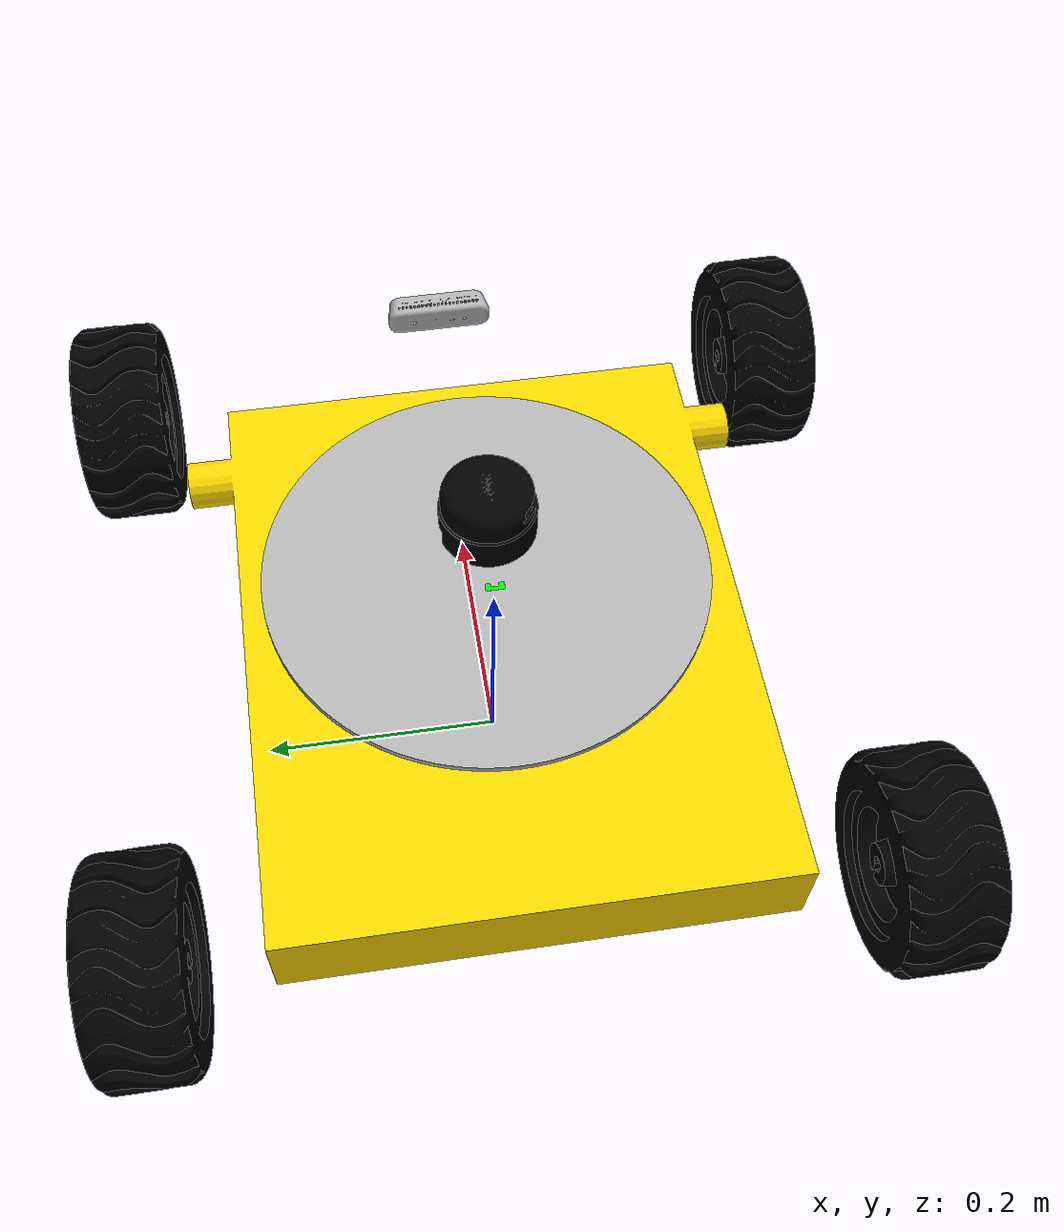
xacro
<?xml version="1.0" ?>
<robot name="diff_bot" xmlns:xacro="http://www.ros.org/wiki/xacro">

<xacro:include filename="$(find diff_bot_description)/urdf/materials.xacro" />
<xacro:include filename="$(find diff_bot_description)/urdf/diff_bot.gazebo" />
<xacro:include filename="$(find diff_bot_description)/urdf/diff_bot.ros2_control.xacro" />

<link name="base_footprint"/>
<link name="base_link">
  <inertial>
    <origin xyz="0.015410510646625566 0.0032885452321206408 0.08213442164076495" rpy="0 0 0"/>
    <mass value="7.733963565774207"/>
    <inertia ixx="0.243725" iyy="0.395902" izz="0.626155" ixy="-0.000305" iyz="-3.7e-05" ixz="6.5e-05"/>
  </inertial>
  <visual>
    <origin xyz="0 0 0" rpy="0 0 0"/>
    <geometry>
      <mesh filename="file://$(find diff_bot_description)/meshes/base_link.stl" scale="0.001 0.001 0.001"/>
    </geometry>
    <material name="gold">
      <color rgba="1.000 0.840 0.000 1.000"/>
    </material>
  </visual>
  <collision>
    <origin xyz="0 0 0" rpy="0 0 0"/>
    <geometry>
      <mesh filename="file://$(find diff_bot_description)/meshes/base_link.stl" scale="0.001 0.001 0.001"/>
    </geometry>
  </collision>
</link>

<link name="mani_base_1">
  <inertial>
    <origin xyz="-4.995256376698343e-07 -4.3501910051979564e-07 0.002499926945686806" rpy="0 0 0"/>
    <mass value="1.29885221271853"/>
    <inertia ixx="0.009947" iyy="0.009947" izz="0.019889" ixy="-0.0" iyz="-0.0" ixz="0.0"/>
  </inertial>
  <visual>
    <origin xyz="-0.015655 -0.003848 -0.117553" rpy="0 0 0"/>
    <geometry>
      <mesh filename="file://$(find diff_bot_description)/meshes/mani_base_1.stl" scale="0.001 0.001 0.001"/>
    </geometry>
    <material name="silver"/>
  </visual>
  <collision>
    <origin xyz="-0.015655 -0.003848 -0.117553" rpy="0 0 0"/>
    <geometry>
      <mesh filename="file://$(find diff_bot_description)/meshes/mani_base_1.stl" scale="0.001 0.001 0.001"/>
    </geometry>
  </collision>
</link>

<link name="camera_link">
  <inertial>
    <origin xyz="0.011555495817293426 1.1123942231884131e-05 -0.008510192245975837" rpy="0 0 0"/>
    <mass value="0.04228680176883171"/>
    <inertia ixx="2.8e-05" iyy="4e-06" izz="2.8e-05" ixy="-0.0" iyz="-0.0" ixz="0.0"/>
  </inertial>
  <visual>
    <origin xyz="-0.303755 -0.003399 -0.10806" rpy="0 0 0"/>
    <geometry>
      <mesh filename="file://$(find diff_bot_description)/meshes/camera_link_1.stl" scale="0.001 0.001 0.001"/>
    </geometry>
    <material name="silver"/>
  </visual>
  <collision>
    <origin xyz="-0.303755 -0.003399 -0.10806" rpy="0 0 0"/>
    <geometry>
      <mesh filename="file://$(find diff_bot_description)/meshes/camera_link_1.stl" scale="0.001 0.001 0.001"/>
    </geometry>
  </collision>
</link>

<link name="wheel_1">
  <inertial>
    <origin xyz="-4.941246887213424e-07 0.02983103010425081 2.449353010069294e-05" rpy="0 0 0"/>
    <mass value="8.686526585739857"/>
    <inertia ixx="0.021355" iyy="0.035633" izz="0.021359" ixy="-0.0" iyz="2e-06" ixz="-0.0"/>
  </inertial>
  <visual>
    <origin xyz="-0.271977 -0.257399 -0.047453" rpy="0 0 0"/>
    <geometry>
      <mesh filename="file://$(find diff_bot_description)/meshes/wheel_1_1.stl" scale="0.001 0.001 0.001"/>
    </geometry>
    <material name="black">
      <color rgba="0.000 0.000 0.000 1.000"/>
    </material>
  </visual>
  <collision>
    <origin xyz="-0.271977 -0.257399 -0.047453" rpy="0 0 0"/>
    <geometry>
      <mesh filename="file://$(find diff_bot_description)/meshes/wheel_1_1.stl" scale="0.001 0.001 0.001"/>
    </geometry>
  </collision>
</link>

<link name="wheel_2">
  <inertial>
    <origin xyz="-4.917332631637628e-07 -0.029830862700103877 2.4483379133757865e-05" rpy="0 0 0"/>
    <mass value="8.686480966639415"/>
    <inertia ixx="0.021355" iyy="0.035633" izz="0.021359" ixy="0.0" iyz="-2e-06" ixz="-0.0"/>
  </inertial>
  <visual>
    <origin xyz="-0.271977 0.250601 -0.047453" rpy="0 0 0"/>
    <geometry>
      <mesh filename="file://$(find diff_bot_description)/meshes/wheel_2_1.stl" scale="0.001 0.001 0.001"/>
    </geometry>
    <material name="black">
      <color rgba="0.000 0.000 0.000 1.000"/>
    </material>
  </visual>
  <collision>
    <origin xyz="-0.271977 0.250601 -0.047453" rpy="0 0 0"/>
    <geometry>
      <mesh filename="file://$(find diff_bot_description)/meshes/wheel_2_1.stl" scale="0.001 0.001 0.001"/>
    </geometry>
  </collision>
</link>

<link name="wheel_3">
  <inertial>
    <origin xyz="-5.147089091328549e-07 0.029830991192337897 2.448330354028888e-05" rpy="0 0 0"/>
    <mass value="8.686480942275635"/>
    <inertia ixx="0.021355" iyy="0.035633" izz="0.021358" ixy="0.0" iyz="2e-06" ixz="0.0"/>
  </inertial>
  <visual>
    <origin xyz="0.240667 -0.256899 -0.047453" rpy="0 0 0"/>
    <geometry>
      <mesh filename="file://$(find diff_bot_description)/meshes/wheel_3_1.stl" scale="0.001 0.001 0.001"/>
    </geometry>
    <material name="black">
      <color rgba="0.000 0.000 0.000 1.000"/>
    </material>
  </visual>
  <collision>
    <origin xyz="0.240667 -0.256899 -0.047453" rpy="0 0 0"/>
    <geometry>
      <mesh filename="file://$(find diff_bot_description)/meshes/wheel_3_1.stl" scale="0.001 0.001 0.001"/>
    </geometry>
  </collision>
</link>

<link name="wheel_4">
  <inertial>
    <origin xyz="-5.123200101930792e-07 -0.029830901585230718 2.449315346100822e-05" rpy="0 0 0"/>
    <mass value="8.686526623237171"/>
    <inertia ixx="0.021355" iyy="0.035633" izz="0.021359" ixy="-0.0" iyz="-2e-06" ixz="0.0"/>
  </inertial>
  <visual>
    <origin xyz="0.240667 0.251101 -0.047453" rpy="0 0 0"/>
    <geometry>
      <mesh filename="file://$(find diff_bot_description)/meshes/wheel_4_1.stl" scale="0.001 0.001 0.001"/>
    </geometry>
    <material name="black">
      <color rgba="0.000 0.000 0.000 1.000"/>
    </material>
  </visual>
  <collision>
    <origin xyz="0.240667 0.251101 -0.047453" rpy="0 0 0"/>
    <geometry>
      <mesh filename="file://$(find diff_bot_description)/meshes/wheel_4_1.stl" scale="0.001 0.001 0.001"/>
    </geometry>
  </collision>
</link>

<link name="imu_link">
  <inertial>
    <origin xyz="-0.0037135131762633944 0.00015074437785556966 -7.192465925183467e-06" rpy="0 0 0"/>
    <mass value="${1*0.027981306586696276}"/>
    <inertia ixx="${1*4e-06}" iyy="${1*2e-06}" izz="${2e-06}" ixy="0.0" iyz="0.0" ixz="0.0"/>
  </inertial>
  <visual>
    <origin xyz="0.331142 0.000425 -0.054538" rpy="0 0 0"/>
    <geometry>
      <mesh filename="file://$(find diff_bot_description)/meshes/imu_1.stl" scale="0.001 0.001 0.001"/>
    </geometry>
    <material name="green">
      <color rgba="0.000 1.000 0.000 1.000"/>
    </material>
  </visual>
  <collision>
    <origin xyz="0.331142 0.000425 -0.054538" rpy="0 0 0"/>
    <geometry>
      <mesh filename="file://$(find diff_bot_description)/meshes/imu_1.stl" scale="0.001 0.001 0.001"/>
    </geometry>
  </collision>
</link>

<link name="lidar_link">
  <inertial>
    <origin xyz="0.024168716871690317 0.00016153042204601072 0.023318927009167684" rpy="0 0 0"/>
    <mass value="${1*1.5656994294737245}"/>
    <inertia ixx="${1*0.000799}" iyy="${1*0.000843}" izz="${1*0.001052}" ixy="0.0" iyz="0.0" ixz="0.0"/>
  </inertial>
  <visual>
    <origin xyz="0.024557 0.000233 -0.105076" rpy="0 0 0"/>
    <geometry>
      <mesh filename="file://$(find diff_bot_description)/meshes/Intel_Realsense_RPLIDAR_1.stl" scale="0.001 0.001 0.001"/>
    </geometry>
    <material name="black">
      <color rgba="0.000 0.000 0.000 1.000"/>
    </material>
  </visual>
  <collision>
    <origin xyz="0.024557 0.000233 -0.105076" rpy="0 0 0"/>
    <geometry>
      <mesh filename="file://$(find diff_bot_description)/meshes/Intel_Realsense_RPLIDAR_1.stl" scale="0.001 0.001 0.001"/>
    </geometry>
  </collision>
</link>

<joint name="Rigid 0" type="fixed">
  <origin xyz="0.0 0.0 0.1" rpy="0 0 0"/>
  <parent link="base_footprint"/>
  <child link="base_link"/>
</joint>

<joint name="Rigid 1" type="fixed">
  <origin xyz="0.015655 0.003848 0.117553" rpy="0 0 0"/>
  <parent link="base_link"/>
  <child link="mani_base_1"/>
</joint>

<joint name="Rigid 2" type="fixed">
  <origin xyz="0.303755 0.003399 0.10806" rpy="0 0 0"/>
  <parent link="base_link"/>
  <child link="camera_link"/>
</joint>

<joint name="Rigid 3" type="fixed">
  <origin xyz="0.0 0.0 0.10806" rpy="0 0 0"/>
  <parent link="base_link"/>
  <child link="imu_link"/>
</joint>

<joint name="Rigid 4" type="fixed">
  <origin xyz="0.01 0.0 0.15" rpy="0 0 0"/>
  <parent link="base_link"/>
  <child link="lidar_link"/>
</joint>

<joint name="Revolute_3" type="continuous">
  <origin xyz="0.271977 0.257399 0.047453" rpy="0 0 0"/>
  <parent link="base_link"/>
  <child link="wheel_1"/>
  <axis xyz="0.0 1.0 -0.0"/>
</joint>

<joint name="Revolute_4" type="continuous">
  <origin xyz="0.271977 -0.250601 0.047453" rpy="0 0 0"/>
  <parent link="base_link"/>
  <child link="wheel_2"/>
  <axis xyz="-0.0 1.0 0.0"/>
</joint>

<joint name="Revolute_5" type="continuous">
  <origin xyz="-0.240667 0.256899 0.047453" rpy="0 0 0"/>
  <parent link="base_link"/>
  <child link="wheel_3"/>
  <axis xyz="0.0 1.0 -0.0"/>
</joint>

<joint name="Revolute_6" type="continuous">
  <origin xyz="-0.240667 -0.251101 0.047453" rpy="0 0 0"/>
  <parent link="base_link"/>
  <child link="wheel_4"/>
  <axis xyz="-0.0 1.0 0.0"/>
</joint>

<link name="camera_link_depth"></link>
<link name="camera_bottom_screw_frame"></link>
<link name="camera_depth_frame"></link>
<link name="camera_depth_optical_frame"></link>
<link name="camera_color_frame"></link>
<link name="camera_color_optical_frame"></link>
<link name="camera_left_ir_frame"></link>
<link name="camera_left_ir_optical_frame"></link>
<link name="camera_right_ir_frame"></link>
<link name="camera_right_ir_optical_frame"></link>

<joint name="camera_joint" type="fixed">
  <parent link="camera_link" />
  <child link="camera_bottom_screw_frame" />
  <origin xyz="0 0.0 0" rpy="0 0 0" />
</joint>

<joint name="camera_link_joint" type="fixed">
  <parent link="camera_bottom_screw_frame" />
  <child link="camera_link_depth" />
  <origin xyz="0 0.0 0.0 " rpy="0 0 0" />
</joint>

<joint name="camera_depth_joint" type="fixed">
  <parent link="camera_link_depth" />
  <child link="camera_depth_frame" />
  <origin xyz="0 0 0" rpy="0 0 0" />
</joint>
<joint name="camera_depth_optical_joint" type="fixed">
  <parent link="camera_depth_frame" />
  <child link="camera_depth_optical_frame" />
  <origin xyz="0 0 0 " rpy="-1.57 0 -1.57" />
</joint>
<joint name="camera_color_joint" type="fixed">
  <parent link="camera_depth_frame" />
  <child link="camera_color_frame" />
  <origin xyz="0 0 0" rpy="0 0 0" />
</joint>
<joint name="camera_color_optical_joint" type="fixed">
  <parent link="camera_color_frame" />
  <child link="camera_color_optical_frame" />
  <origin xyz="0 0 0 " rpy="-1.57 0 -1.57" />
</joint>
<joint name="camera_left_ir_joint" type="fixed">
  <parent link="camera_depth_frame" />
  <child link="camera_left_ir_frame" />
  <origin xyz="0 0 0 " rpy="0 0 0 " />
</joint>
<joint name="camera_left_ir_optical_joint" type="fixed">
  <parent link="camera_left_ir_frame" />
  <child link="camera_left_ir_optical_frame" />
  <origin xyz="0 0 0 " rpy="-1.57 0 -1.57" />
</joint>
<joint name="camera_right_ir_joint" type="fixed">
  <parent link="camera_depth_frame" />
  <child link="camera_right_ir_frame" />
  <origin xyz="0 -0.050 0 " rpy="0 0 0" />
</joint>
<joint name="camera_right_ir_optical_joint" type="fixed">
  <parent link="camera_right_ir_frame" />
  <child link="camera_right_ir_optical_frame" />
  <origin xyz="0 0 0 " rpy="-1.57 0 -1.57" />
</joint>

</robot>

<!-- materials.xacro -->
<robot name="amr_mani" xmlns:xacro="http://www.ros.org/wiki/xacro" >

<material name="silver">
  <color rgba="0.700 0.700 0.700 1.000"/>
</material>

</robot>

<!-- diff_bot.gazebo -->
<robot name="diff_bot" xmlns:xacro="http://www.ros.org/wiki/xacro" >

<xacro:property name="body_color" value="Gazebo/Silver" />

<gazebo>
  <plugin name="control" filename="libgazebo_ros_control.so"/>
</gazebo>

<gazebo reference="base_link">
  <material name="body_color" value="Gazebo/Gold"></material>
  <mu1>0.2</mu1>
  <mu2>0.2</mu2>
  <self_collide>true</self_collide>
  <gravity>true</gravity>
</gazebo>

<gazebo reference="mani_base_1">
  <material>${body_color}</material>
  <mu1>0.2</mu1>
  <mu2>0.2</mu2>
  <self_collide>true</self_collide>
</gazebo>

<gazebo reference="camera_link">
  <material>${body_color}</material>
  <mu1>0.2</mu1>
  <mu2>0.2</mu2>
  <self_collide>true</self_collide>
</gazebo>

<gazebo reference="wheel_1">
  <material name="body_color" value="Gazebo/Black"></material>
  <mu1>0.2</mu1>
  <mu2>0.2</mu2>
  <self_collide>false</self_collide>
</gazebo>

<gazebo reference="wheel_2">
  <material name="body_color" value="Gazebo/Black"></material>
  <mu1>0.2</mu1>
  <mu2>0.2</mu2>
  <self_collide>false</self_collide>
</gazebo>

<gazebo reference="wheel_3">
  <material name="body_color" value="Gazebo/Black"></material>
  <mu1>0.2</mu1>
  <mu2>0.2</mu2>
  <self_collide>false</self_collide>
</gazebo>

<gazebo reference="wheel_4">
  <material name="body_color" value="Gazebo/Black"></material>
  <mu1>0.2</mu1>
  <mu2>0.2</mu2>
  <self_collide>false</self_collide>
</gazebo>

<gazebo reference="imu_link">
  <material name="body_color" value="Gazebo/Grass"></material>
  <mu1>0.2</mu1>
  <mu2>0.2</mu2>
  <self_collide>true</self_collide>
</gazebo>

<gazebo reference="lidar_link">
  <material name="body_color" value="Gazebo/Black"></material>
  <mu1>0.2</mu1>
  <mu2>0.2</mu2>
  <self_collide>true</self_collide>
</gazebo>

<gazebo reference="imu_link">
  <gravity>true</gravity>
  <sensor name="imu_sensor" type="imu">
    <always_on>true</always_on>
    <update_rate>100</update_rate>
    <visualize>true</visualize>
    <topic>__default_topic__</topic>
    <plugin filename="libgazebo_ros_imu_sensor.so" name="imu_plugin">
      <ros>
          <namespace>/</namespace>
          <remapping>~/out:=imu/data</remapping>
      </ros>
      <topicName>imu</topicName>
      <bodyName>imu_link</bodyName>
      <update_rate_HZ>100.0</update_rate_HZ>
      <gaussianNoise>0.0</gaussianNoise>
      <xyz_offset>0 0 0</xyz_offset>
      <rpy_offset>0 0 0</rpy_offset>
      <frame_name>imu_link</frame_name>
      <initial_orientation_as_reference>false</initial_orientation_as_reference>
    </plugin>
    <pose>0 0 0 0 0 0</pose>
  </sensor>
</gazebo>

<gazebo reference="lidar_link">
  <sensor name="lidar" type="ray">
    <always_on>true</always_on>
    <visualize>true</visualize>
    <update_rate>10</update_rate>
    <ray>
      <scan>
        <horizontal>
          <samples>360</samples>
          <resolution>1.000000</resolution>
          <min_angle>0.000000</min_angle>
          <max_angle>6.280000</max_angle>
        </horizontal>
      </scan>
      <range>
        <min>0.120000</min>
        <max>3.5</max>
        <resolution>0.015000</resolution>
      </range>
      <noise>
        <type>gaussian</type>
        <mean>0.0</mean>
        <stddev>0.01</stddev>
      </noise>
    </ray>
    <plugin name="scan" filename="libgazebo_ros_ray_sensor.so">
      <ros>
        <namespace>/</namespace>
        <remapping>~/out:=scan</remapping>
      </ros>
      <output_type>sensor_msgs/LaserScan</output_type>
      <frame_name>lidar_link</frame_name>
    </plugin>
  </sensor>
</gazebo>

<gazebo reference="camera_link">
  <sensor name="cameradepth" type="depth">
    <camera name="camera">
        <horizontal_fov>1.2043</horizontal_fov>
        <image>
            <width>640</width>
            <height>480</height>
            <format>R8G8B8</format>
        </image>
        <clip>
            <near>0.1</near>
            <far>100</far>
        </clip>
    </camera>
    <always_on>1</always_on>
    <update_rate>30</update_rate>
    <visualize>0</visualize>
  </sensor>
  <sensor name="cameracolor" type="camera">
    <camera name="camera">
        <horizontal_fov>1.2043</horizontal_fov>
        <image>
            <width>640</width>
            <height>480</height>
            <format>RGB_INT8</format>
        </image>
        <clip>
            <near>0.1</near>
            <far>100</far>
        </clip>
        <noise>
            <type>gaussian</type>
            <mean>0.0</mean>
            <stddev>0.007</stddev>
        </noise>
    </camera>
    <always_on>1</always_on>
    <update_rate>30</update_rate>
    <visualize>0</visualize>
  </sensor>
  <sensor name="cameraired1" type="camera">
    <camera name="camera">
        <horizontal_fov>1.2043</horizontal_fov>
        <image>
            <width>640</width>
            <height>480</height>
            <format>L_INT8</format>
        </image>
        <clip>
            <near>0.1</near>
            <far>100</far>
        </clip>
        <noise>
            <type>gaussian</type>
            <mean>0.0</mean>
            <stddev>0.05</stddev>
        </noise>
    </camera>
    <always_on>1</always_on>
    <update_rate>1</update_rate>
    <visualize>0</visualize>
  </sensor>
  <sensor name="cameraired2" type="camera">
    <camera name="camera">
        <horizontal_fov>1.2043</horizontal_fov>
        <image>
            <width>640</width>
            <height>480</height>
            <format>L_INT8</format>
        </image>
        <clip>
            <near>0.1</near>
            <far>100</far>
        </clip>
        <noise>
            <type>gaussian</type>
            <mean>0.0</mean>
            <stddev>0.05</stddev>
        </noise>
    </camera>
    <always_on>1</always_on>
    <update_rate>1</update_rate>
    <visualize>0</visualize>
  </sensor>
</gazebo>
<gazebo>
  <plugin name="camera" filename="librealsense_gazebo_plugin.so">
      <ros>
        <namespace>/</namespace>
      </ros>
      <prefix>camera</prefix>
      <depthUpdateRate>15.0</depthUpdateRate>
      <colorUpdateRate>15.0</colorUpdateRate>
      <infraredUpdateRate>15.0</infraredUpdateRate>
      <depthTopicName>camera/aligned_depth_to_color/image_raw</depthTopicName>
      <depthCameraInfoTopicName>camera/depth/camera_info</depthCameraInfoTopicName>
      <colorTopicName>camera/color/image_raw</colorTopicName>
      <colorCameraInfoTopicName>camera/color/camera_info</colorCameraInfoTopicName>
      <infrared1TopicName>camera/infra1/image_raw</infrared1TopicName>
      <infrared1CameraInfoTopicName>camera/infra1/camera_info</infrared1CameraInfoTopicName>
      <infrared2TopicName>camera/infra2/image_raw</infrared2TopicName>
      <infrared2CameraInfoTopicName>camera/infra2/camera_info</infrared2CameraInfoTopicName>
      <colorOpticalframeName>camera_color_optical_frame</colorOpticalframeName>
      <depthOpticalframeName>camera_depth_optical_frame</depthOpticalframeName>
      <infrared1OpticalframeName>camera_left_ir_optical_frame</infrared1OpticalframeName>
      <infrared2OpticalframeName>camera_right_ir_optical_frame</infrared2OpticalframeName>
      <rangeMinDepth>0.1</rangeMinDepth>
      <rangeMaxDepth>8.0</rangeMaxDepth>
      <pointCloud>true</pointCloud>
      <pointCloudTopicName>camera/depth/color/points</pointCloudTopicName>
      <pointCloudCutoff>0.1</pointCloudCutoff>
      <pointCloudCutoffMax>8.0</pointCloudCutoffMax>
  </plugin>
</gazebo>

<gazebo>
  <plugin name="gazebo_ros_p3d" filename="libgazebo_ros_p3d.so">
    <ros>
      <namespace>/</namespace>
      <remapping>odom:=odometry/unfiltered</remapping>
    </ros>
    <body_name>base_footprint</body_name>
    <frame_name>odom</frame_name>
    <update_rate>100.0</update_rate>
    <xyz_offset>0.0 0.0 0.0</xyz_offset>
    <rpy_offset>0.0 0.0 0.0</rpy_offset>
    <gaussian_noise>0.0</gaussian_noise>
  </plugin>
</gazebo>

</robot>
